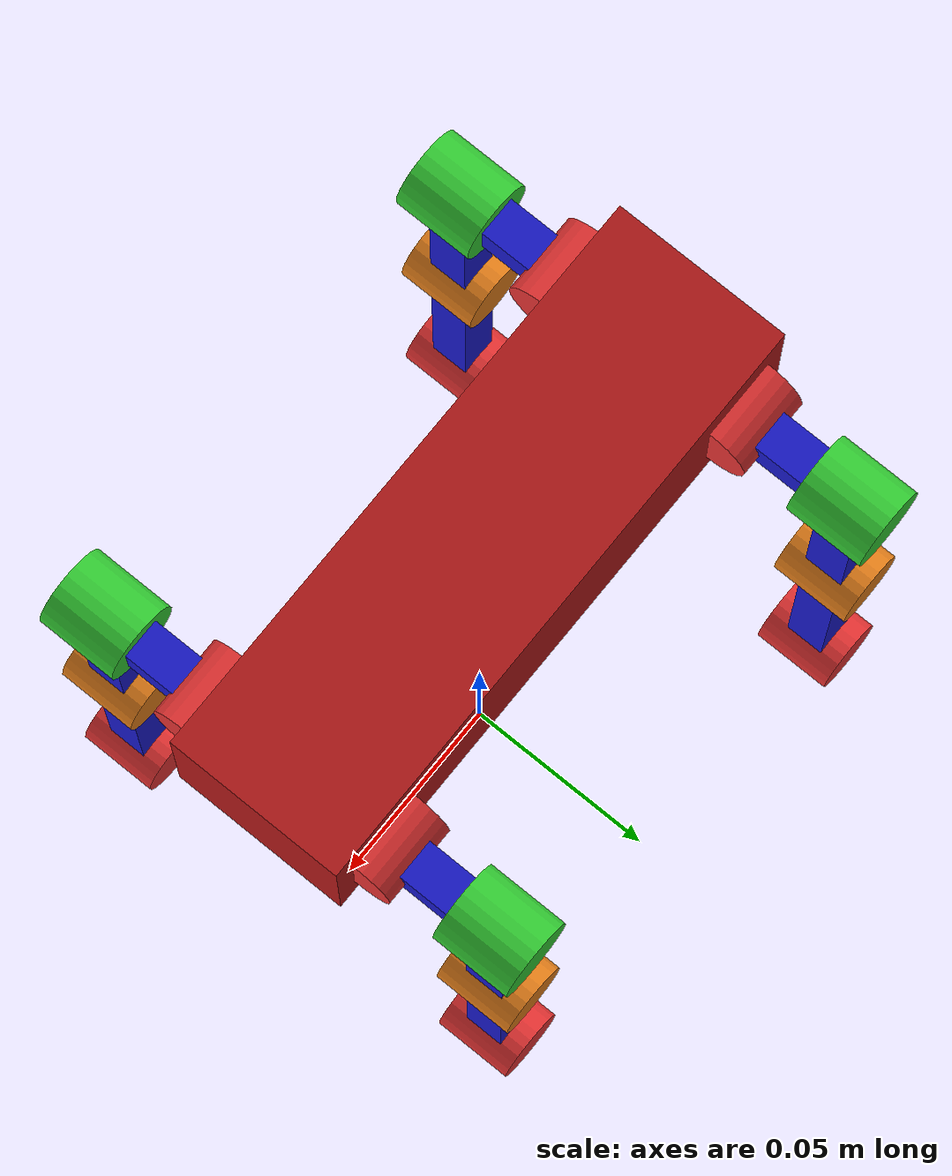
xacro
<?xml version="1.0"?>
<robot name="yahboom_dog"
       xmlns:xacro="http://www.ros.org/wiki/xacro"
       xmlns:ros2_control="http://ros.org/ros2_control">

  <xacro:property name="L"  value="${45.0/1000.0}"/>
  <xacro:property name="W"  value="${150.0/1000.0}"/>
  <xacro:property name="L1" value="${31.6/1000.0}"/>
  <xacro:property name="L2" value="${60.0/1000.0}"/>
  <xacro:property name="L3" value="${75.0/1000.0}"/>

  <xacro:property name="body_len" value="${W}"/>
  <xacro:property name="body_wid" value="${L}"/>
  <xacro:property name="body_hei" value="0.04"/>
  <xacro:property name="joint_r"  value="0.01"/>
  <xacro:property name="len_radius_joint"  value="0.02"/>

  <material name="mat_body"><color rgba="0.7 0.1 0.1 1"/></material>
  <material name="mat_leg"><color rgba="0.1 0.1 0.8 1"/></material>
  <material name="mat_joint_root"><color rgba="0.9 0.2 0.2 1"/></material>
  <material name="mat_joint_hip"><color rgba="0.2 0.8 0.2 1"/></material>
  <material name="mat_joint_knee"><color rgba="0.9 0.5 0.1 1"/></material>

  <link name="base_footprint"/>

  <link name="base_link">
    <visual>
      <origin xyz="0 0 ${body_hei/2.0}" rpy="0 0 0"/>
      <geometry><box size="${body_len} ${body_wid} ${body_hei}"/></geometry>
      <material name="mat_body"/>
    </visual>
    <collision>
      <origin xyz="0 0 ${body_hei/2.0}" rpy="0 0 0"/>
      <geometry><box size="${body_len} ${body_wid} ${body_hei}"/></geometry>
    </collision>
    <inertial>
      <mass value="2.0"/>
      <inertia ixx="0.01" iyy="0.01" izz="0.01" ixy="0" ixz="0" iyz="0"/>
    </inertial>
  </link>

  <joint name="base_joint" type="fixed">
    <parent link="base_footprint"/>
    <child  link="base_link"/>

    <origin xyz="0 0 ${L2 + L3 + body_hei/2.0}" rpy="0 0 0"/>
  </joint>

  <xacro:macro name="leg" params="leg_name x_sign y_sign">
    <xacro:property name="leg_offset" value="0.015"/>
    <xacro:property name="root_x" value="${x_sign*(body_len/2.0 - leg_offset)}"/>
    <xacro:property name="root_y" value="${y_sign*(body_wid/2.0)}"/>
    <xacro:property name="root_z" value="${body_hei/2.0}"/>

    <link name="${leg_name}_root">
      <visual>
        <origin xyz="0 0 0" rpy="0 ${pi/2.0} 0"/>
        <geometry><cylinder radius="${joint_r}" length="${len_radius_joint}"/></geometry>
        <material name="mat_joint_root"/>
      </visual>
      <collision>
        <origin xyz="0 0 0" rpy="0 ${pi/2.0} 0"/>
        <geometry><cylinder radius="${joint_r}" length="${len_radius_joint}"/></geometry>
      </collision>
      <inertial>
        <mass value="0.1"/>
        <inertia ixx="1e-4" iyy="1e-4" izz="1e-4" ixy="0" ixz="0" iyz="0"/>
      </inertial>
    </link>

    <joint name="${leg_name}_root_joint" type="revolute">
      <parent link="base_link"/>
      <child  link="${leg_name}_root"/>
      <origin xyz="${root_x} ${root_y} ${root_z}" rpy="0 0 0"/>
      <axis xyz="1 0 0"/>
      <limit lower="${-35*pi/180.0}" upper="${35*pi/180.0}" effort="8" velocity="5"/>
    </joint>

    <link name="${leg_name}_basal">
      <visual>
        <origin xyz="0 ${y_sign*L1/2.0} 0"/>
        <geometry><box size="0.01 ${L1} 0.01"/></geometry>
        <material name="mat_leg"/>
      </visual>
      <collision>
        <origin xyz="0 ${y_sign*L1/2.0} 0"/>
        <geometry><box size="0.01 ${L1} 0.01"/></geometry>
      </collision>
      <inertial>
        <mass value="0.1"/>
        <inertia ixx="1e-4" iyy="1e-4" izz="1e-4" ixy="0" ixz="0" iyz="0"/>
      </inertial>
    </link>

    <joint name="${leg_name}_basal_joint" type="fixed">
      <parent link="${leg_name}_root"/>
      <child  link="${leg_name}_basal"/>
    </joint>

    <link name="${leg_name}_hip">
      <visual>
        <origin xyz="0 0 0" rpy="${pi/2.0} 0 0"/>
        <geometry><cylinder radius="${joint_r}" length="${len_radius_joint}"/></geometry>
        <material name="mat_joint_hip"/>
      </visual>
      <collision>
        <origin xyz="0 0 0" rpy="${pi/2.0} 0 0"/>
        <geometry><cylinder radius="${joint_r}" length="${len_radius_joint}"/></geometry>
      </collision>
      <inertial>
        <mass value="0.1"/>
        <inertia ixx="1e-4" iyy="1e-4" izz="1e-4" ixy="0" ixz="0" iyz="0"/>
      </inertial>
    </link>

    <joint name="${leg_name}_hip_joint" type="revolute">
      <parent link="${leg_name}_basal"/>
      <child  link="${leg_name}_hip"/>
      <origin xyz="0 ${y_sign*L1} 0"/>
      <axis xyz="0 ${-y_sign} 0"/>
      <limit lower="${-90*pi/180.0}" upper="${90*pi/180.0}" effort="12" velocity="6"/>
    </joint>

    <link name="${leg_name}_thigh">
      <visual>
        <origin xyz="0 0 ${-L2/2.0}"/>
        <geometry><box size="0.01 0.01 ${L2}"/></geometry>
        <material name="mat_leg"/>
      </visual>
      <collision>
        <origin xyz="0 0 ${-L2/2.0}"/>
        <geometry><box size="0.01 0.01 ${L2}"/></geometry>
      </collision>
      <inertial>
        <mass value="0.2"/>
        <inertia ixx="5e-4" iyy="5e-4" izz="5e-4" ixy="0" ixz="0" iyz="0"/>
      </inertial>
    </link>

    <joint name="${leg_name}_thigh_fix" type="fixed">
      <parent link="${leg_name}_hip"/>
      <child  link="${leg_name}_thigh"/>
    </joint>

    <link name="${leg_name}_knee">
      <visual>
        <origin xyz="0 0 0" rpy="${pi/2.0} 0 0"/>
        <geometry><cylinder radius="${joint_r*0.93}" length="${len_radius_joint}"/></geometry>
        <material name="mat_joint_knee"/>
      </visual>
      <collision>
        <origin xyz="0 0 0" rpy="${pi/2.0} 0 0"/>
        <geometry><cylinder radius="${joint_r*0.93}" length="${len_radius_joint}"/></geometry>
      </collision>
      <inertial>
        <mass value="0.1"/>
        <inertia ixx="1e-4" iyy="1e-4" izz="1e-4" ixy="0" ixz="0" iyz="0"/>
      </inertial>
    </link>

    <joint name="${leg_name}_knee_joint" type="revolute">
      <parent link="${leg_name}_thigh"/>
      <child  link="${leg_name}_knee"/>
      <origin xyz="0 0 ${-L2}"/>
      <axis xyz="0 ${-y_sign} 0"/>
      <limit lower="${-150*pi/180.0}" upper="0.0" effort="12" velocity="6"/>
    </joint>

    <link name="${leg_name}_calf">
      <visual>
        <origin xyz="0 0 ${-L3/2.0}"/>
        <geometry><box size="0.01 0.01 ${L3}"/></geometry>
        <material name="mat_leg"/>
      </visual>
      <collision>
        <origin xyz="0 0 ${-L3/2.0}"/>
        <geometry><box size="0.01 0.01 ${L3}"/></geometry>
      </collision>
      <inertial>
        <mass value="0.2"/>
        <inertia ixx="5e-4" iyy="5e-4" izz="5e-4" ixy="0" ixz="0" iyz="0"/>
      </inertial>
    </link>

    <joint name="${leg_name}_calf_fix" type="fixed">
      <parent link="${leg_name}_knee"/>
      <child  link="${leg_name}_calf"/>
    </joint>

    <link name="${leg_name}_foot">
      <visual>
        <origin xyz="0 0 0" rpy="${pi/2.0} 0 0"/>
        <geometry><cylinder radius="${joint_r*0.93}" length="${len_radius_joint}"/></geometry>
        <material name="mat_joint_root"/>
      </visual>
      <collision>
        <origin xyz="0 0 0" rpy="${pi/2.0} 0 0"/>
        <geometry><cylinder radius="${joint_r*0.93}" length="${len_radius_joint}"/></geometry>
      </collision>
      <inertial>
        <mass value="0.05"/>
        <inertia ixx="5e-5" iyy="5e-5" izz="5e-5" ixy="0" ixz="0" iyz="0"/>
      </inertial>
    </link>

    <joint name="${leg_name}_foot_joint" type="fixed">
      <parent link="${leg_name}_calf"/>
      <child  link="${leg_name}_foot"/>
      <origin xyz="0 0 ${-L3}"/>
    </joint>

  </xacro:macro>

  <xacro:leg leg_name="FR" x_sign="1"  y_sign="-1"/>
  <xacro:leg leg_name="FL" x_sign="1"  y_sign="1"/>
  <xacro:leg leg_name="RR" x_sign="-1" y_sign="-1"/>
  <xacro:leg leg_name="RL" x_sign="-1" y_sign="1"/>

   <ros2_control name="GazeboSystem" type="system">
    <hardware>
      <plugin>gazebo_ros2_control/GazeboSystem</plugin>
    </hardware>

    <joint name="FR_root_joint">
      <command_interface name="position"/>
      <state_interface name="position"/>
    </joint>
    <joint name="FR_hip_joint">
      <command_interface name="position"/>
      <state_interface name="position"/>
    </joint>
    <joint name="FR_knee_joint">
      <command_interface name="position"/>
      <state_interface name="position"/>
    </joint>

    <joint name="FL_root_joint">
      <command_interface name="position"/>
      <state_interface name="position"/>
    </joint>
    <joint name="FL_hip_joint">
      <command_interface name="position"/>
      <state_interface name="position"/>
    </joint>
    <joint name="FL_knee_joint">
      <command_interface name="position"/>
      <state_interface name="position"/>
    </joint>

    <joint name="RR_root_joint">
      <command_interface name="position"/>
      <state_interface name="position"/>
    </joint>
    <joint name="RR_hip_joint">
      <command_interface name="position"/>
      <state_interface name="position"/>
    </joint>
    <joint name="RR_knee_joint">
      <command_interface name="position"/>
      <state_interface name="position"/>
    </joint>

    <joint name="RL_root_joint">
      <command_interface name="position"/>
      <state_interface name="position"/>
    </joint>
    <joint name="RL_hip_joint">
      <command_interface name="position"/>
      <state_interface name="position"/>
    </joint>
    <joint name="RL_knee_joint">
      <command_interface name="position"/>
      <state_interface name="position"/>
    </joint>
  </ros2_control>
  <gazebo>
  <plugin name="gazebo_ros2_control" filename="libgazebo_ros2_control.so">
    <parameters>/home/yahboom/mi/install/yahboom_dog_description/share/yahboom_dog_description/config/controllers.yaml</parameters>

  </plugin>
</gazebo>

</robot>
